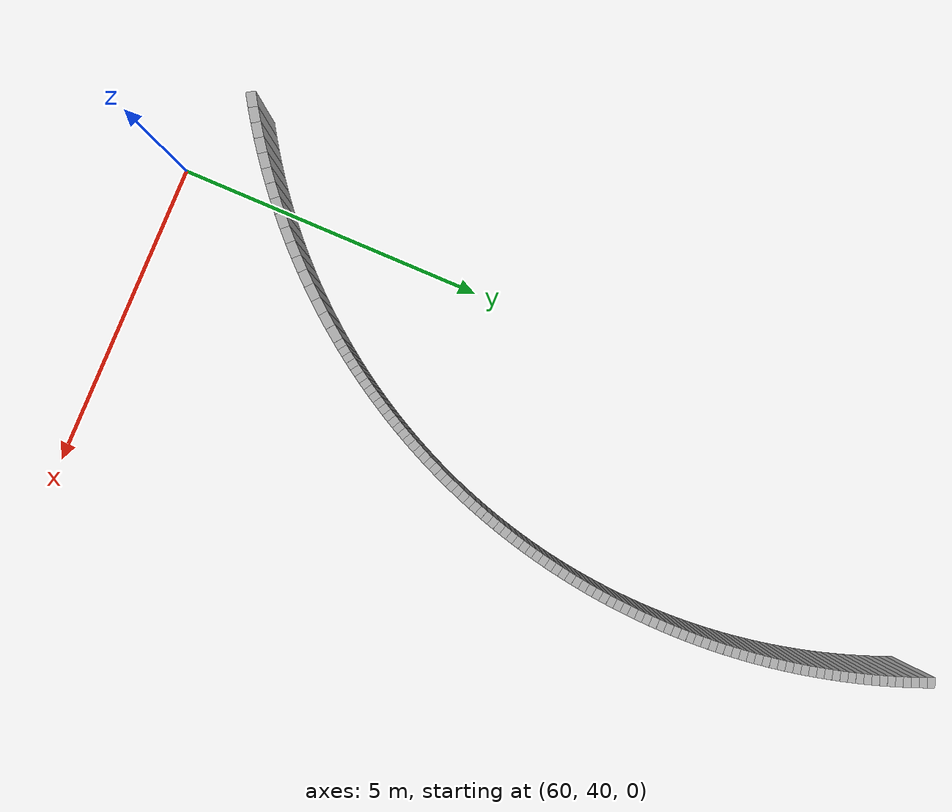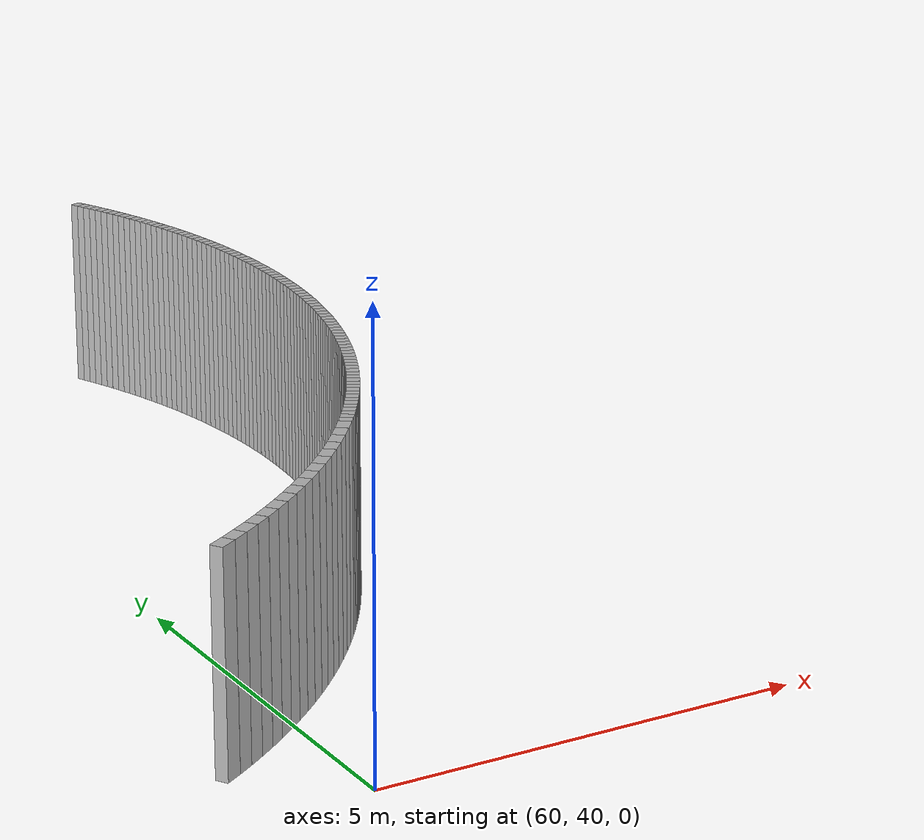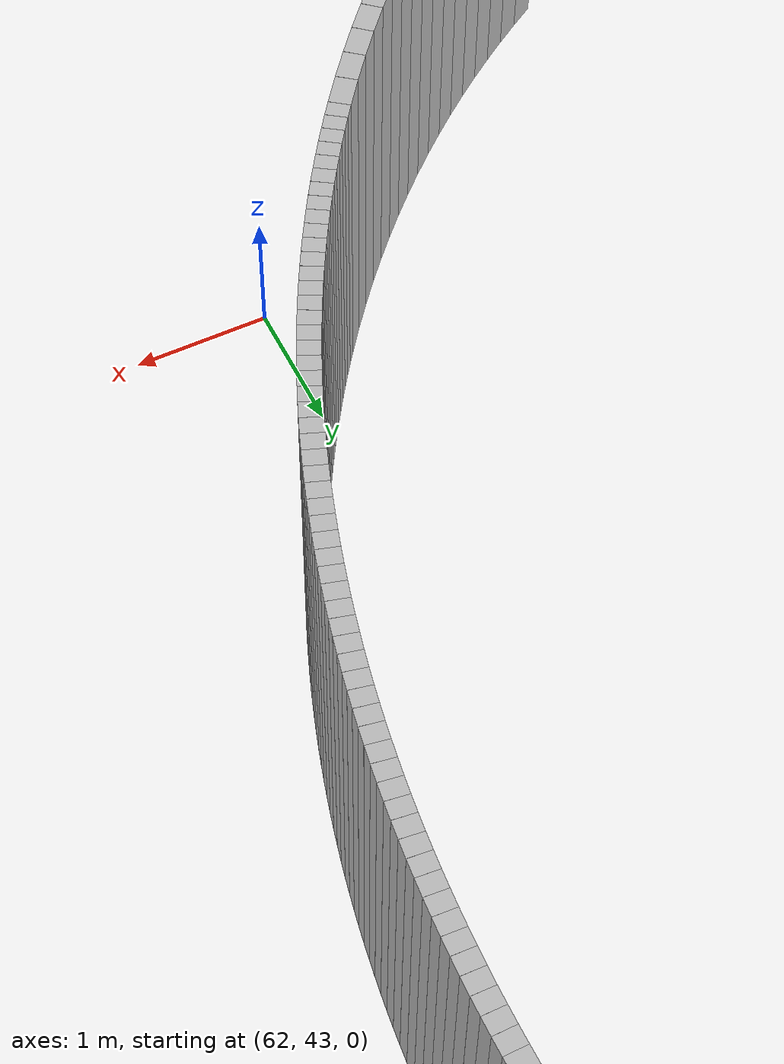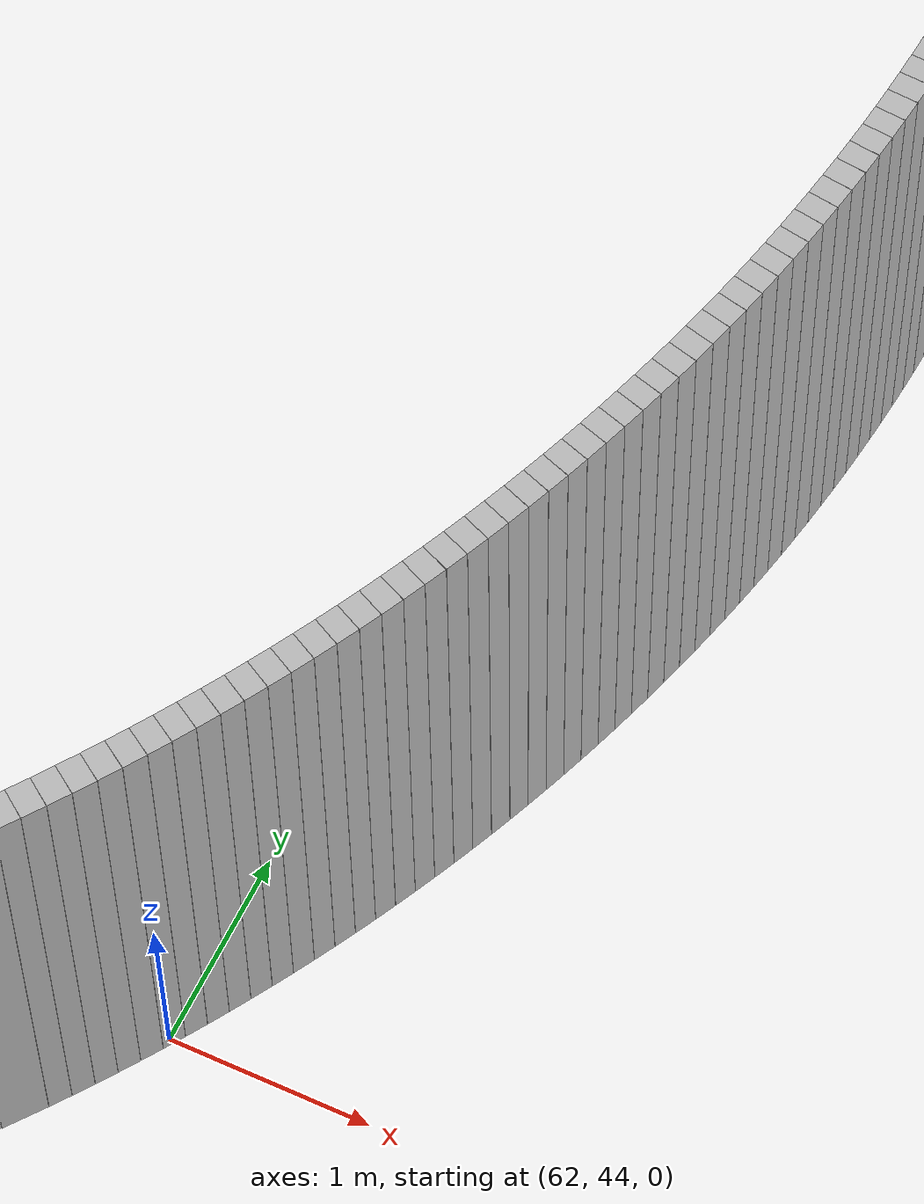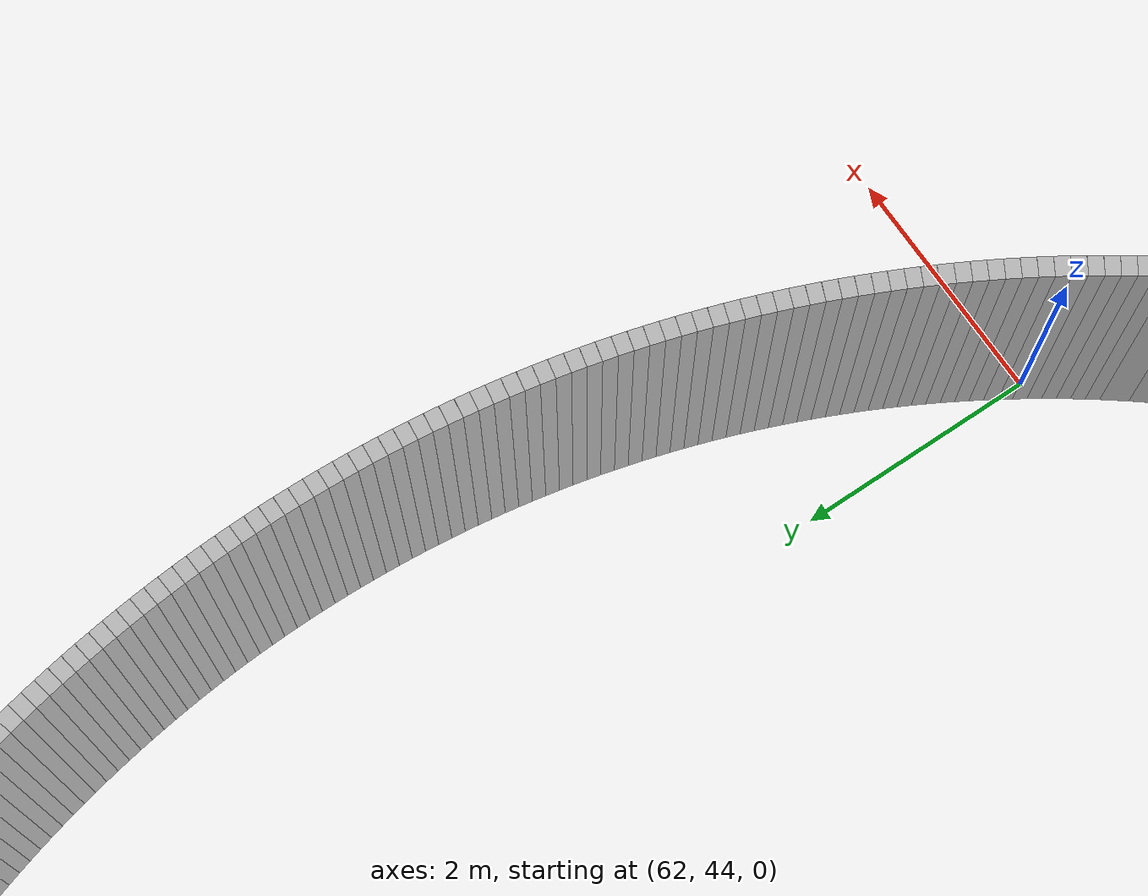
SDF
<sdf version="1.6">
 <model name="sps_2005">
  <static>1</static>
  <allow_auto_disable>0</allow_auto_disable>
  <link name="Wall8031">
   <collision name="collision"><geometry><box><size>0.227495 0.15 2.5</size></box></geometry></collision>
   <visual name="visual">
    <geometry><box><size>0.227495 0.15 2.5</size></box></geometry>
    <transparency>0.0</transparency>
   </visual>
   <pose>58.878 40.981 1.25 0 -0 0.560988</pose>
  </link>
  <link name="Wall8032">
   <collision name="collision"><geometry><box><size>0.227482 0.15 2.5</size></box></geometry></collision>
   <visual name="visual">
    <geometry><box><size>0.227482 0.15 2.5</size></box></geometry>
    <transparency>0.0</transparency>
   </visual>
   <pose>59.0692 41.1042 1.25 0 -0 0.583687</pose>
  </link>
  <link name="Wall8033">
   <collision name="collision"><geometry><box><size>0.227351 0.15 2.5</size></box></geometry></collision>
   <visual name="visual">
    <geometry><box><size>0.227351 0.15 2.5</size></box></geometry>
    <transparency>0.0</transparency>
   </visual>
   <pose>59.2575 41.2317 1.25 0 -0 0.606767</pose>
  </link>
  <link name="Wall8034">
   <collision name="collision"><geometry><box><size>0.227515 0.15 2.5</size></box></geometry></collision>
   <visual name="visual">
    <geometry><box><size>0.227515 0.15 2.5</size></box></geometry>
    <transparency>0.0</transparency>
   </visual>
   <pose>59.4429 41.3634 1.25 0 -0 0.628638</pose>
  </link>
  <link name="Wall8035">
   <collision name="collision"><geometry><box><size>0.227437 0.15 2.5</size></box></geometry></collision>
   <visual name="visual">
    <geometry><box><size>0.227437 0.15 2.5</size></box></geometry>
    <transparency>0.0</transparency>
   </visual>
   <pose>59.6253 41.4993 1.25 0 -0 0.651981</pose>
  </link>
  <link name="Wall8036">
   <collision name="collision"><geometry><box><size>0.227378 0.15 2.5</size></box></geometry></collision>
   <visual name="visual">
    <geometry><box><size>0.227378 0.15 2.5</size></box></geometry>
    <transparency>0.0</transparency>
   </visual>
   <pose>59.8045 41.6393 1.25 0 -0 0.674322</pose>
  </link>
  <link name="Wall8037">
   <collision name="collision"><geometry><box><size>0.227582 0.15 2.5</size></box></geometry></collision>
   <visual name="visual">
    <geometry><box><size>0.227582 0.15 2.5</size></box></geometry>
    <transparency>0.0</transparency>
   </visual>
   <pose>59.9805 41.7834 1.25 0 -0 0.697863</pose>
  </link>
  <link name="Wall8038">
   <collision name="collision"><geometry><box><size>0.227458 0.15 2.5</size></box></geometry></collision>
   <visual name="visual">
    <geometry><box><size>0.227458 0.15 2.5</size></box></geometry>
    <transparency>0.0</transparency>
   </visual>
   <pose>60.1532 41.9315 1.25 0 -0 0.71989</pose>
  </link>
  <link name="Wall8039">
   <collision name="collision"><geometry><box><size>0.227481 0.15 2.5</size></box></geometry></collision>
   <visual name="visual">
    <geometry><box><size>0.227481 0.15 2.5</size></box></geometry>
    <transparency>0.0</transparency>
   </visual>
   <pose>60.3225 42.0834 1.25 0 -0 0.742508</pose>
  </link>
  <link name="Wall8040">
   <collision name="collision"><geometry><box><size>0.227447 0.15 2.5</size></box></geometry></collision>
   <visual name="visual">
    <geometry><box><size>0.227447 0.15 2.5</size></box></geometry>
    <transparency>0.0</transparency>
   </visual>
   <pose>60.4883 42.2391 1.25 0 -0 0.765473</pose>
  </link>
  <link name="Wall8041">
   <collision name="collision"><geometry><box><size>0.227402 0.15 2.5</size></box></geometry></collision>
   <visual name="visual">
    <geometry><box><size>0.227402 0.15 2.5</size></box></geometry>
    <transparency>0.0</transparency>
   </visual>
   <pose>60.6505 42.3985 1.25 0 -0 0.787865</pose>
  </link>
  <link name="Wall8042">
   <collision name="collision"><geometry><box><size>0.227481 0.15 2.5</size></box></geometry></collision>
   <visual name="visual">
    <geometry><box><size>0.227481 0.15 2.5</size></box></geometry>
    <transparency>0.0</transparency>
   </visual>
   <pose>60.809 42.5616 1.25 0 -0 0.811773</pose>
  </link>
  <link name="Wall8043">
   <collision name="collision"><geometry><box><size>0.227409 0.15 2.5</size></box></geometry></collision>
   <visual name="visual">
    <geometry><box><size>0.227409 0.15 2.5</size></box></geometry>
    <transparency>0.0</transparency>
   </visual>
   <pose>60.9636 42.7283 1.25 0 -0 0.833812</pose>
  </link>
  <link name="Wall8044">
   <collision name="collision"><geometry><box><size>0.227368 0.15 2.5</size></box></geometry></collision>
   <visual name="visual">
    <geometry><box><size>0.227368 0.15 2.5</size></box></geometry>
    <transparency>0.0</transparency>
   </visual>
   <pose>61.1146 42.8984 1.25 0 -0 0.856259</pose>
  </link>
  <link name="Wall8045">
   <collision name="collision"><geometry><box><size>0.227457 0.15 2.5</size></box></geometry></collision>
   <visual name="visual">
    <geometry><box><size>0.227457 0.15 2.5</size></box></geometry>
    <transparency>0.0</transparency>
   </visual>
   <pose>61.2616 43.0719 1.25 0 -0 0.879459</pose>
  </link>
  <link name="Wall8046">
   <collision name="collision"><geometry><box><size>0.227506 0.15 2.5</size></box></geometry></collision>
   <visual name="visual">
    <geometry><box><size>0.227506 0.15 2.5</size></box></geometry>
    <transparency>0.0</transparency>
   </visual>
   <pose>61.4047 43.2487 1.25 0 -0 0.901376</pose>
  </link>
  <link name="Wall8047">
   <collision name="collision"><geometry><box><size>0.227369 0.15 2.5</size></box></geometry></collision>
   <visual name="visual">
    <geometry><box><size>0.227369 0.15 2.5</size></box></geometry>
    <transparency>0.0</transparency>
   </visual>
   <pose>61.5437 43.4287 1.25 0 -0 0.924987</pose>
  </link>
  <link name="Wall8048">
   <collision name="collision"><geometry><box><size>0.113621 0.15 2.5</size></box></geometry></collision>
   <visual name="visual">
    <geometry><box><size>0.113621 0.15 2.5</size></box></geometry>
    <transparency>0.0</transparency>
   </visual>
   <pose>61.6456 43.5654 1.25 0 -0 0.940618</pose>
  </link>
  <link name="Wall8049">
   <collision name="collision"><geometry><box><size>0.113928 0.15 2.5</size></box></geometry></collision>
   <visual name="visual">
    <geometry><box><size>0.113928 0.15 2.5</size></box></geometry>
    <transparency>0.0</transparency>
   </visual>
   <pose>61.7121 43.6577 1.25 0 -0 0.952477</pose>
  </link>
  <link name="Wall8050">
   <collision name="collision"><geometry><box><size>0.113641 0.15 2.5</size></box></geometry></collision>
   <visual name="visual">
    <geometry><box><size>0.113641 0.15 2.5</size></box></geometry>
    <transparency>0.0</transparency>
   </visual>
   <pose>61.7775 43.7508 1.25 0 -0 0.96447</pose>
  </link>
  <link name="Wall8051">
   <collision name="collision"><geometry><box><size>0.11364 0.15 2.5</size></box></geometry></collision>
   <visual name="visual">
    <geometry><box><size>0.11364 0.15 2.5</size></box></geometry>
    <transparency>0.0</transparency>
   </visual>
   <pose>61.8416 43.8446 1.25 0 -0 0.976835</pose>
  </link>
  <link name="Wall8052">
   <collision name="collision"><geometry><box><size>0.11391 0.15 2.5</size></box></geometry></collision>
   <visual name="visual">
    <geometry><box><size>0.11391 0.15 2.5</size></box></geometry>
    <transparency>0.0</transparency>
   </visual>
   <pose>61.9048 43.9392 1.25 0 -0 0.986806</pose>
  </link>
  <link name="Wall8053">
   <collision name="collision"><geometry><box><size>0.113736 0.15 2.5</size></box></geometry></collision>
   <visual name="visual">
    <geometry><box><size>0.113736 0.15 2.5</size></box></geometry>
    <transparency>0.0</transparency>
   </visual>
   <pose>61.9671 44.0345 1.25 0 -0 0.997976</pose>
  </link>
  <link name="Wall8054">
   <collision name="collision"><geometry><box><size>0.113661 0.15 2.5</size></box></geometry></collision>
   <visual name="visual">
    <geometry><box><size>0.113661 0.15 2.5</size></box></geometry>
    <transparency>0.0</transparency>
   </visual>
   <pose>62.0282 44.1304 1.25 0 -0 1.00901</pose>
  </link>
  <link name="Wall8055">
   <collision name="collision"><geometry><box><size>0.113627 0.15 2.5</size></box></geometry></collision>
   <visual name="visual">
    <geometry><box><size>0.113627 0.15 2.5</size></box></geometry>
    <transparency>0.0</transparency>
   </visual>
   <pose>62.088 44.227 1.25 0 -0 1.02273</pose>
  </link>
  <link name="Wall8056">
   <collision name="collision"><geometry><box><size>0.113949 0.15 2.5</size></box></geometry></collision>
   <visual name="visual">
    <geometry><box><size>0.113949 0.15 2.5</size></box></geometry>
    <transparency>0.0</transparency>
   </visual>
   <pose>62.1468 44.3244 1.25 0 -0 1.03258</pose>
  </link>
  <link name="Wall8057">
   <collision name="collision"><geometry><box><size>0.113644 0.15 2.5</size></box></geometry></collision>
   <visual name="visual">
    <geometry><box><size>0.113644 0.15 2.5</size></box></geometry>
    <transparency>0.0</transparency>
   </visual>
   <pose>62.2046 44.4224 1.25 0 -0 1.04346</pose>
  </link>
  <link name="Wall8058">
   <collision name="collision"><geometry><box><size>0.113755 0.15 2.5</size></box></geometry></collision>
   <visual name="visual">
    <geometry><box><size>0.113755 0.15 2.5</size></box></geometry>
    <transparency>0.0</transparency>
   </visual>
   <pose>62.2613 44.521 1.25 0 -0 1.05578</pose>
  </link>
  <link name="Wall8059">
   <collision name="collision"><geometry><box><size>0.113781 0.15 2.5</size></box></geometry></collision>
   <visual name="visual">
    <geometry><box><size>0.113781 0.15 2.5</size></box></geometry>
    <transparency>0.0</transparency>
   </visual>
   <pose>62.3168 44.6203 1.25 0 -0 1.06636</pose>
  </link>
  <link name="Wall8060">
   <collision name="collision"><geometry><box><size>0.11368 0.15 2.5</size></box></geometry></collision>
   <visual name="visual">
    <geometry><box><size>0.11368 0.15 2.5</size></box></geometry>
    <transparency>0.0</transparency>
   </visual>
   <pose>62.3711 44.7202 1.25 0 -0 1.07809</pose>
  </link>
  <link name="Wall8061">
   <collision name="collision"><geometry><box><size>0.113731 0.15 2.5</size></box></geometry></collision>
   <visual name="visual">
    <geometry><box><size>0.113731 0.15 2.5</size></box></geometry>
    <transparency>0.0</transparency>
   </visual>
   <pose>62.4243 44.8207 1.25 0 -0 1.08987</pose>
  </link>
  <link name="Wall8062">
   <collision name="collision"><geometry><box><size>0.113661 0.15 2.5</size></box></geometry></collision>
   <visual name="visual">
    <geometry><box><size>0.113661 0.15 2.5</size></box></geometry>
    <transparency>0.0</transparency>
   </visual>
   <pose>62.4763 44.9218 1.25 0 -0 1.10163</pose>
  </link>
  <link name="Wall8063">
   <collision name="collision"><geometry><box><size>0.11377 0.15 2.5</size></box></geometry></collision>
   <visual name="visual">
    <geometry><box><size>0.11377 0.15 2.5</size></box></geometry>
    <transparency>0.0</transparency>
   </visual>
   <pose>62.5272 45.0235 1.25 0 -0 1.11171</pose>
  </link>
  <link name="Wall8064">
   <collision name="collision"><geometry><box><size>0.113705 0.15 2.5</size></box></geometry></collision>
   <visual name="visual">
    <geometry><box><size>0.113705 0.15 2.5</size></box></geometry>
    <transparency>0.0</transparency>
   </visual>
   <pose>62.577 45.1258 1.25 0 -0 1.12515</pose>
  </link>
  <link name="Wall8065">
   <collision name="collision"><geometry><box><size>0.113649 0.15 2.5</size></box></geometry></collision>
   <visual name="visual">
    <geometry><box><size>0.113649 0.15 2.5</size></box></geometry>
    <transparency>0.0</transparency>
   </visual>
   <pose>62.6254 45.2286 1.25 0 -0 1.13501</pose>
  </link>
  <link name="Wall8066">
   <collision name="collision"><geometry><box><size>0.11374 0.15 2.5</size></box></geometry></collision>
   <visual name="visual">
    <geometry><box><size>0.11374 0.15 2.5</size></box></geometry>
    <transparency>0.0</transparency>
   </visual>
   <pose>62.6729 45.3319 1.25 0 -0 1.14483</pose>
  </link>
  <link name="Wall8067">
   <collision name="collision"><geometry><box><size>0.113726 0.15 2.5</size></box></geometry></collision>
   <visual name="visual">
    <geometry><box><size>0.113726 0.15 2.5</size></box></geometry>
    <transparency>0.0</transparency>
   </visual>
   <pose>62.7192 45.4358 1.25 0 -0 1.15829</pose>
  </link>
  <link name="Wall8068">
   <collision name="collision"><geometry><box><size>0.113731 0.15 2.5</size></box></geometry></collision>
   <visual name="visual">
    <geometry><box><size>0.113731 0.15 2.5</size></box></geometry>
    <transparency>0.0</transparency>
   </visual>
   <pose>62.7643 45.5402 1.25 0 -0 1.16767</pose>
  </link>
  <link name="Wall8069">
   <collision name="collision"><geometry><box><size>0.113752 0.15 2.5</size></box></geometry></collision>
   <visual name="visual">
    <geometry><box><size>0.113752 0.15 2.5</size></box></geometry>
    <transparency>0.0</transparency>
   </visual>
   <pose>62.8082 45.6451 1.25 0 -0 1.18112</pose>
  </link>
  <link name="Wall8070">
   <collision name="collision"><geometry><box><size>0.113872 0.15 2.5</size></box></geometry></collision>
   <visual name="visual">
    <geometry><box><size>0.113872 0.15 2.5</size></box></geometry>
    <transparency>0.0</transparency>
   </visual>
   <pose>62.8509 45.7506 1.25 0 -0 1.19138</pose>
  </link>
  <link name="Wall8071">
   <collision name="collision"><geometry><box><size>0.11378 0.15 2.5</size></box></geometry></collision>
   <visual name="visual">
    <geometry><box><size>0.11378 0.15 2.5</size></box></geometry>
    <transparency>0.0</transparency>
   </visual>
   <pose>62.8924 45.8566 1.25 0 -0 1.20374</pose>
  </link>
  <link name="Wall8072">
   <collision name="collision"><geometry><box><size>0.11352 0.15 2.5</size></box></geometry></collision>
   <visual name="visual">
    <geometry><box><size>0.11352 0.15 2.5</size></box></geometry>
    <transparency>0.0</transparency>
   </visual>
   <pose>62.9327 45.9629 1.25 0 -0 1.21435</pose>
  </link>
  <link name="Wall8073">
   <collision name="collision"><geometry><box><size>0.113731 0.15 2.5</size></box></geometry></collision>
   <visual name="visual">
    <geometry><box><size>0.113731 0.15 2.5</size></box></geometry>
    <transparency>0.0</transparency>
   </visual>
   <pose>62.9717 46.0696 1.25 0 -0 1.22647</pose>
  </link>
  <link name="Wall8074">
   <collision name="collision"><geometry><box><size>0.113613 0.15 2.5</size></box></geometry></collision>
   <visual name="visual">
    <geometry><box><size>0.113613 0.15 2.5</size></box></geometry>
    <transparency>0.0</transparency>
   </visual>
   <pose>63.0095 46.1768 1.25 0 -0 1.23749</pose>
  </link>
  <link name="Wall8075">
   <collision name="collision"><geometry><box><size>0.113876 0.15 2.5</size></box></geometry></collision>
   <visual name="visual">
    <geometry><box><size>0.113876 0.15 2.5</size></box></geometry>
    <transparency>0.0</transparency>
   </visual>
   <pose>63.046 46.2845 1.25 0 -0 1.24905</pose>
  </link>
  <link name="Wall8076">
   <collision name="collision"><geometry><box><size>0.113612 0.15 2.5</size></box></geometry></collision>
   <visual name="visual">
    <geometry><box><size>0.113612 0.15 2.5</size></box></geometry>
    <transparency>0.0</transparency>
   </visual>
   <pose>63.0814 46.3926 1.25 0 -0 1.25958</pose>
  </link>
  <link name="Wall8077">
   <collision name="collision"><geometry><box><size>0.113729 0.15 2.5</size></box></geometry></collision>
   <visual name="visual">
    <geometry><box><size>0.113729 0.15 2.5</size></box></geometry>
    <transparency>0.0</transparency>
   </visual>
   <pose>63.1157 46.501 1.25 0 -0 1.2706</pose>
  </link>
  <link name="Wall8078">
   <collision name="collision"><geometry><box><size>0.1139 0.15 2.5</size></box></geometry></collision>
   <visual name="visual">
    <geometry><box><size>0.1139 0.15 2.5</size></box></geometry>
    <transparency>0.0</transparency>
   </visual>
   <pose>63.1487 46.6099 1.25 0 -0 1.28227</pose>
  </link>
  <link name="Wall8079">
   <collision name="collision"><geometry><box><size>0.113685 0.15 2.5</size></box></geometry></collision>
   <visual name="visual">
    <geometry><box><size>0.113685 0.15 2.5</size></box></geometry>
    <transparency>0.0</transparency>
   </visual>
   <pose>63.1804 46.7192 1.25 0 -0 1.29456</pose>
  </link>
  <link name="Wall8080">
   <collision name="collision"><geometry><box><size>0.113594 0.15 2.5</size></box></geometry></collision>
   <visual name="visual">
    <geometry><box><size>0.113594 0.15 2.5</size></box></geometry>
    <transparency>0.0</transparency>
   </visual>
   <pose>63.2108 46.8287 1.25 0 -0 1.30549</pose>
  </link>
  <link name="Wall8081">
   <collision name="collision"><geometry><box><size>0.113811 0.15 2.5</size></box></geometry></collision>
   <visual name="visual">
    <geometry><box><size>0.113811 0.15 2.5</size></box></geometry>
    <transparency>0.0</transparency>
   </visual>
   <pose>63.24 46.9386 1.25 0 -0 1.3171</pose>
  </link>
  <link name="Wall8082">
   <collision name="collision"><geometry><box><size>0.113763 0.15 2.5</size></box></geometry></collision>
   <visual name="visual">
    <geometry><box><size>0.113763 0.15 2.5</size></box></geometry>
    <transparency>0.0</transparency>
   </visual>
   <pose>63.2679 47.0489 1.25 0 -0 1.32751</pose>
  </link>
  <link name="Wall8083">
   <collision name="collision"><geometry><box><size>0.113849 0.15 2.5</size></box></geometry></collision>
   <visual name="visual">
    <geometry><box><size>0.113849 0.15 2.5</size></box></geometry>
    <transparency>0.0</transparency>
   </visual>
   <pose>63.2946 47.1595 1.25 0 -0 1.34038</pose>
  </link>
  <link name="Wall8084">
   <collision name="collision"><geometry><box><size>0.113709 0.15 2.5</size></box></geometry></collision>
   <visual name="visual">
    <geometry><box><size>0.113709 0.15 2.5</size></box></geometry>
    <transparency>0.0</transparency>
   </visual>
   <pose>63.3201 47.2704 1.25 0 -0 1.35056</pose>
  </link>
  <link name="Wall8085">
   <collision name="collision"><geometry><box><size>0.113674 0.15 2.5</size></box></geometry></collision>
   <visual name="visual">
    <geometry><box><size>0.113674 0.15 2.5</size></box></geometry>
    <transparency>0.0</transparency>
   </visual>
   <pose>63.3443 47.3815 1.25 0 -0 1.36203</pose>
  </link>
  <link name="Wall8086">
   <collision name="collision"><geometry><box><size>0.113583 0.15 2.5</size></box></geometry></collision>
   <visual name="visual">
    <geometry><box><size>0.113583 0.15 2.5</size></box></geometry>
    <transparency>0.0</transparency>
   </visual>
   <pose>63.3671 47.4928 1.25 0 -0 1.37393</pose>
  </link>
  <link name="Wall8087">
   <collision name="collision"><geometry><box><size>0.113771 0.15 2.5</size></box></geometry></collision>
   <visual name="visual">
    <geometry><box><size>0.113771 0.15 2.5</size></box></geometry>
    <transparency>0.0</transparency>
   </visual>
   <pose>63.3888 47.6044 1.25 0 -0 1.38518</pose>
  </link>
  <link name="Wall8088">
   <collision name="collision"><geometry><box><size>0.113912 0.15 2.5</size></box></geometry></collision>
   <visual name="visual">
    <geometry><box><size>0.113912 0.15 2.5</size></box></geometry>
    <transparency>0.0</transparency>
   </visual>
   <pose>63.4091 47.7164 1.25 0 -0 1.39631</pose>
  </link>
  <link name="Wall8089">
   <collision name="collision"><geometry><box><size>0.113747 0.15 2.5</size></box></geometry></collision>
   <visual name="visual">
    <geometry><box><size>0.113747 0.15 2.5</size></box></geometry>
    <transparency>0.0</transparency>
   </visual>
   <pose>63.4282 47.8286 1.25 0 -0 1.40803</pose>
  </link>
  <link name="Wall8090">
   <collision name="collision"><geometry><box><size>0.113676 0.15 2.5</size></box></geometry></collision>
   <visual name="visual">
    <geometry><box><size>0.113676 0.15 2.5</size></box></geometry>
    <transparency>0.0</transparency>
   </visual>
   <pose>63.4461 47.9409 1.25 0 -0 1.4188</pose>
  </link>
  <link name="Wall8091">
   <collision name="collision"><geometry><box><size>0.11374 0.15 2.5</size></box></geometry></collision>
   <visual name="visual">
    <geometry><box><size>0.11374 0.15 2.5</size></box></geometry>
    <transparency>0.0</transparency>
   </visual>
   <pose>63.4627 48.0534 1.25 0 -0 1.42973</pose>
  </link>
  <link name="Wall8092">
   <collision name="collision"><geometry><box><size>0.113551 0.15 2.5</size></box></geometry></collision>
   <visual name="visual">
    <geometry><box><size>0.113551 0.15 2.5</size></box></geometry>
    <transparency>0.0</transparency>
   </visual>
   <pose>63.478 48.166 1.25 0 -0 1.44197</pose>
  </link>
  <link name="Wall8093">
   <collision name="collision"><geometry><box><size>0.113771 0.15 2.5</size></box></geometry></collision>
   <visual name="visual">
    <geometry><box><size>0.113771 0.15 2.5</size></box></geometry>
    <transparency>0.0</transparency>
   </visual>
   <pose>63.492 48.2788 1.25 0 -0 1.4525</pose>
  </link>
  <link name="Wall8094">
   <collision name="collision"><geometry><box><size>0.11385 0.15 2.5</size></box></geometry></collision>
   <visual name="visual">
    <geometry><box><size>0.11385 0.15 2.5</size></box></geometry>
    <transparency>0.0</transparency>
   </visual>
   <pose>63.5047 48.3919 1.25 0 -0 1.46553</pose>
  </link>
  <link name="Wall8095">
   <collision name="collision"><geometry><box><size>0.113734 0.15 2.5</size></box></geometry></collision>
   <visual name="visual">
    <geometry><box><size>0.113734 0.15 2.5</size></box></geometry>
    <transparency>0.0</transparency>
   </visual>
   <pose>63.516 48.5051 1.25 0 -0 1.47567</pose>
  </link>
  <link name="Wall8096">
   <collision name="collision"><geometry><box><size>0.113731 0.15 2.5</size></box></geometry></collision>
   <visual name="visual">
    <geometry><box><size>0.113731 0.15 2.5</size></box></geometry>
    <transparency>0.0</transparency>
   </visual>
   <pose>63.5261 48.6184 1.25 0 -0 1.48806</pose>
  </link>
  <link name="Wall8097">
   <collision name="collision"><geometry><box><size>0.113702 0.15 2.5</size></box></geometry></collision>
   <visual name="visual">
    <geometry><box><size>0.113702 0.15 2.5</size></box></geometry>
    <transparency>0.0</transparency>
   </visual>
   <pose>63.535 48.7318 1.25 0 -0 1.49826</pose>
  </link>
  <link name="Wall8098">
   <collision name="collision"><geometry><box><size>0.113849 0.15 2.5</size></box></geometry></collision>
   <visual name="visual">
    <geometry><box><size>0.113849 0.15 2.5</size></box></geometry>
    <transparency>0.0</transparency>
   </visual>
   <pose>63.5425 48.8453 1.25 0 -0 1.51125</pose>
  </link>
  <link name="Wall8099">
   <collision name="collision"><geometry><box><size>0.113542 0.15 2.5</size></box></geometry></collision>
   <visual name="visual">
    <geometry><box><size>0.113542 0.15 2.5</size></box></geometry>
    <transparency>0.0</transparency>
   </visual>
   <pose>63.5487 48.9588 1.25 0 -0 1.52132</pose>
  </link>
  <link name="Wall8100">
   <collision name="collision"><geometry><box><size>0.113671 0.15 2.5</size></box></geometry></collision>
   <visual name="visual">
    <geometry><box><size>0.113671 0.15 2.5</size></box></geometry>
    <transparency>0.0</transparency>
   </visual>
   <pose>63.5537 49.0723 1.25 0 -0 1.53213</pose>
  </link>
  <link name="Wall8101">
   <collision name="collision"><geometry><box><size>0.113814 0.15 2.5</size></box></geometry></collision>
   <visual name="visual">
    <geometry><box><size>0.113814 0.15 2.5</size></box></geometry>
    <transparency>0.0</transparency>
   </visual>
   <pose>63.5575 49.186 1.25 0 -0 1.54291</pose>
  </link>
  <link name="Wall8102">
   <collision name="collision"><geometry><box><size>0.113659 0.15 2.5</size></box></geometry></collision>
   <visual name="visual">
    <geometry><box><size>0.113659 0.15 2.5</size></box></geometry>
    <transparency>0.0</transparency>
   </visual>
   <pose>63.5598 49.2997 1.25 0 -0 1.55683</pose>
  </link>
  <link name="Wall8103">
   <collision name="collision"><geometry><box><size>0.11377 0.15 2.5</size></box></geometry></collision>
   <visual name="visual">
    <geometry><box><size>0.11377 0.15 2.5</size></box></geometry>
    <transparency>0.0</transparency>
   </visual>
   <pose>63.5608 49.4134 1.25 0 -0 1.56704</pose>
  </link>
  <link name="Wall8104">
   <collision name="collision"><geometry><box><size>0.113833 0.15 2.5</size></box></geometry></collision>
   <visual name="visual">
    <geometry><box><size>0.113833 0.15 2.5</size></box></geometry>
    <transparency>0.0</transparency>
   </visual>
   <pose>63.5607 49.5272 1.25 0 -0 1.57777</pose>
  </link>
  <link name="Wall8105">
   <collision name="collision"><geometry><box><size>0.113608 0.15 2.5</size></box></geometry></collision>
   <visual name="visual">
    <geometry><box><size>0.113608 0.15 2.5</size></box></geometry>
    <transparency>0.0</transparency>
   </visual>
   <pose>63.5592 49.6409 1.25 0 -0 1.59014</pose>
  </link>
  <link name="Wall8106">
   <collision name="collision"><geometry><box><size>0.113643 0.15 2.5</size></box></geometry></collision>
   <visual name="visual">
    <geometry><box><size>0.113643 0.15 2.5</size></box></geometry>
    <transparency>0.0</transparency>
   </visual>
   <pose>63.5563 49.7545 1.25 0 -0 1.60249</pose>
  </link>
  <link name="Wall8107">
   <collision name="collision"><geometry><box><size>0.113689 0.15 2.5</size></box></geometry></collision>
   <visual name="visual">
    <geometry><box><size>0.113689 0.15 2.5</size></box></geometry>
    <transparency>0.0</transparency>
   </visual>
   <pose>63.5521 49.8681 1.25 0 -0 1.61322</pose>
  </link>
  <link name="Wall8108">
   <collision name="collision"><geometry><box><size>0.113734 0.15 2.5</size></box></geometry></collision>
   <visual name="visual">
    <geometry><box><size>0.113734 0.15 2.5</size></box></geometry>
    <transparency>0.0</transparency>
   </visual>
   <pose>63.5467 49.9817 1.25 0 -0 1.6218</pose>
  </link>
  <link name="Wall8109">
   <collision name="collision"><geometry><box><size>0.113875 0.15 2.5</size></box></geometry></collision>
   <visual name="visual">
    <geometry><box><size>0.113875 0.15 2.5</size></box></geometry>
    <transparency>0.0</transparency>
   </visual>
   <pose>63.5402 50.0953 1.25 0 -0 1.63408</pose>
  </link>
  <link name="Wall8110">
   <collision name="collision"><geometry><box><size>0.113729 0.15 2.5</size></box></geometry></collision>
   <visual name="visual">
    <geometry><box><size>0.113729 0.15 2.5</size></box></geometry>
    <transparency>0.0</transparency>
   </visual>
   <pose>63.5323 50.2088 1.25 0 -0 1.64654</pose>
  </link>
  <link name="Wall8111">
   <collision name="collision"><geometry><box><size>0.113601 0.15 2.5</size></box></geometry></collision>
   <visual name="visual">
    <geometry><box><size>0.113601 0.15 2.5</size></box></geometry>
    <transparency>0.0</transparency>
   </visual>
   <pose>63.523 50.3221 1.25 0 -0 1.65902</pose>
  </link>
  <link name="Wall8112">
   <collision name="collision"><geometry><box><size>0.113752 0.15 2.5</size></box></geometry></collision>
   <visual name="visual">
    <geometry><box><size>0.113752 0.15 2.5</size></box></geometry>
    <transparency>0.0</transparency>
   </visual>
   <pose>63.5125 50.4353 1.25 0 -0 1.66753</pose>
  </link>
  <link name="Wall8113">
   <collision name="collision"><geometry><box><size>0.113674 0.15 2.5</size></box></geometry></collision>
   <visual name="visual">
    <geometry><box><size>0.113674 0.15 2.5</size></box></geometry>
    <transparency>0.0</transparency>
   </visual>
   <pose>63.5008 50.5484 1.25 0 -0 1.68163</pose>
  </link>
  <link name="Wall8114">
   <collision name="collision"><geometry><box><size>0.113876 0.15 2.5</size></box></geometry></collision>
   <visual name="visual">
    <geometry><box><size>0.113876 0.15 2.5</size></box></geometry>
    <transparency>0.0</transparency>
   </visual>
   <pose>63.4876 50.6614 1.25 0 -0 1.69223</pose>
  </link>
  <link name="Wall8115">
   <collision name="collision"><geometry><box><size>0.113606 0.15 2.5</size></box></geometry></collision>
   <visual name="visual">
    <geometry><box><size>0.113606 0.15 2.5</size></box></geometry>
    <transparency>0.0</transparency>
   </visual>
   <pose>63.4732 50.7742 1.25 0 -0 1.70335</pose>
  </link>
  <link name="Wall8116">
   <collision name="collision"><geometry><box><size>0.11374 0.15 2.5</size></box></geometry></collision>
   <visual name="visual">
    <geometry><box><size>0.11374 0.15 2.5</size></box></geometry>
    <transparency>0.0</transparency>
   </visual>
   <pose>63.4575 50.8868 1.25 0 -0 1.71565</pose>
  </link>
  <link name="Wall8117">
   <collision name="collision"><geometry><box><size>0.113765 0.15 2.5</size></box></geometry></collision>
   <visual name="visual">
    <geometry><box><size>0.113765 0.15 2.5</size></box></geometry>
    <transparency>0.0</transparency>
   </visual>
   <pose>63.4405 50.9993 1.25 0 -0 1.7243</pose>
  </link>
  <link name="Wall8118">
   <collision name="collision"><geometry><box><size>0.113777 0.15 2.5</size></box></geometry></collision>
   <visual name="visual">
    <geometry><box><size>0.113777 0.15 2.5</size></box></geometry>
    <transparency>0.0</transparency>
   </visual>
   <pose>63.4224 51.1116 1.25 0 -0 1.73841</pose>
  </link>
  <link name="Wall8119">
   <collision name="collision"><geometry><box><size>0.113775 0.15 2.5</size></box></geometry></collision>
   <visual name="visual">
    <geometry><box><size>0.113775 0.15 2.5</size></box></geometry>
    <transparency>0.0</transparency>
   </visual>
   <pose>63.4029 51.2237 1.25 0 -0 1.74767</pose>
  </link>
  <link name="Wall8120">
   <collision name="collision"><geometry><box><size>0.113659 0.15 2.5</size></box></geometry></collision>
   <visual name="visual">
    <geometry><box><size>0.113659 0.15 2.5</size></box></geometry>
    <transparency>0.0</transparency>
   </visual>
   <pose>63.3822 51.3355 1.25 0 -0 1.75987</pose>
  </link>
  <link name="Wall8121">
   <collision name="collision"><geometry><box><size>0.113847 0.15 2.5</size></box></geometry></collision>
   <visual name="visual">
    <geometry><box><size>0.113847 0.15 2.5</size></box></geometry>
    <transparency>0.0</transparency>
   </visual>
   <pose>63.3602 51.4471 1.25 0 -0 1.77103</pose>
  </link>
  <link name="Wall8122">
   <collision name="collision"><geometry><box><size>0.113764 0.15 2.5</size></box></geometry></collision>
   <visual name="visual">
    <geometry><box><size>0.113764 0.15 2.5</size></box></geometry>
    <transparency>0.0</transparency>
   </visual>
   <pose>63.3368 51.5585 1.25 0 -0 1.78324</pose>
  </link>
  <link name="Wall8123">
   <collision name="collision"><geometry><box><size>0.113611 0.15 2.5</size></box></geometry></collision>
   <visual name="visual">
    <geometry><box><size>0.113611 0.15 2.5</size></box></geometry>
    <transparency>0.0</transparency>
   </visual>
   <pose>63.3122 51.6695 1.25 0 -0 1.79453</pose>
  </link>
  <link name="Wall8124">
   <collision name="collision"><geometry><box><size>0.113752 0.15 2.5</size></box></geometry></collision>
   <visual name="visual">
    <geometry><box><size>0.113752 0.15 2.5</size></box></geometry>
    <transparency>0.0</transparency>
   </visual>
   <pose>63.2863 51.7802 1.25 0 -0 1.80693</pose>
  </link>
  <link name="Wall8125">
   <collision name="collision"><geometry><box><size>0.113807 0.15 2.5</size></box></geometry></collision>
   <visual name="visual">
    <geometry><box><size>0.113807 0.15 2.5</size></box></geometry>
    <transparency>0.0</transparency>
   </visual>
   <pose>63.2592 51.8907 1.25 0 -0 1.81564</pose>
  </link>
  <link name="Wall8126">
   <collision name="collision"><geometry><box><size>0.113565 0.15 2.5</size></box></geometry></collision>
   <visual name="visual">
    <geometry><box><size>0.113565 0.15 2.5</size></box></geometry>
    <transparency>0.0</transparency>
   </visual>
   <pose>63.2309 52.0008 1.25 0 -0 1.82894</pose>
  </link>
  <link name="Wall8127">
   <collision name="collision"><geometry><box><size>0.113883 0.15 2.5</size></box></geometry></collision>
   <visual name="visual">
    <geometry><box><size>0.113883 0.15 2.5</size></box></geometry>
    <transparency>0.0</transparency>
   </visual>
   <pose>63.2013 52.1106 1.25 0 -0 1.8393</pose>
  </link>
  <link name="Wall8128">
   <collision name="collision"><geometry><box><size>0.11366 0.15 2.5</size></box></geometry></collision>
   <visual name="visual">
    <geometry><box><size>0.11366 0.15 2.5</size></box></geometry>
    <transparency>0.0</transparency>
   </visual>
   <pose>63.1705 52.2201 1.25 0 -0 1.85212</pose>
  </link>
  <link name="Wall8129">
   <collision name="collision"><geometry><box><size>0.113794 0.15 2.5</size></box></geometry></collision>
   <visual name="visual">
    <geometry><box><size>0.113794 0.15 2.5</size></box></geometry>
    <transparency>0.0</transparency>
   </visual>
   <pose>63.1384 52.3292 1.25 0 -0 1.86184</pose>
  </link>
  <link name="Wall8130">
   <collision name="collision"><geometry><box><size>0.113605 0.15 2.5</size></box></geometry></collision>
   <visual name="visual">
    <geometry><box><size>0.113605 0.15 2.5</size></box></geometry>
    <transparency>0.0</transparency>
   </visual>
   <pose>63.105 52.4379 1.25 0 -0 1.87471</pose>
  </link>
  <link name="Wall8131">
   <collision name="collision"><geometry><box><size>0.113783 0.15 2.5</size></box></geometry></collision>
   <visual name="visual">
    <geometry><box><size>0.113783 0.15 2.5</size></box></geometry>
    <transparency>0.0</transparency>
   </visual>
   <pose>63.0705 52.5462 1.25 0 -0 1.88491</pose>
  </link>
  <link name="Wall8132">
   <collision name="collision"><geometry><box><size>0.11378 0.15 2.5</size></box></geometry></collision>
   <visual name="visual">
    <geometry><box><size>0.11378 0.15 2.5</size></box></geometry>
    <transparency>0.0</transparency>
   </visual>
   <pose>63.0347 52.6542 1.25 0 -0 1.89679</pose>
  </link>
  <link name="Wall8133">
   <collision name="collision"><geometry><box><size>0.113639 0.15 2.5</size></box></geometry></collision>
   <visual name="visual">
    <geometry><box><size>0.113639 0.15 2.5</size></box></geometry>
    <transparency>0.0</transparency>
   </visual>
   <pose>62.9976 52.7617 1.25 0 -0 1.908</pose>
  </link>
  <link name="Wall8134">
   <collision name="collision"><geometry><box><size>0.113568 0.15 2.5</size></box></geometry></collision>
   <visual name="visual">
    <geometry><box><size>0.113568 0.15 2.5</size></box></geometry>
    <transparency>0.0</transparency>
   </visual>
   <pose>62.9595 52.8687 1.25 0 -0 1.91906</pose>
  </link>
  <link name="Wall8135">
   <collision name="collision"><geometry><box><size>0.113898 0.15 2.5</size></box></geometry></collision>
   <visual name="visual">
    <geometry><box><size>0.113898 0.15 2.5</size></box></geometry>
    <transparency>0.0</transparency>
   </visual>
   <pose>62.9201 52.9754 1.25 0 -0 1.93001</pose>
  </link>
  <link name="Wall8136">
   <collision name="collision"><geometry><box><size>0.113808 0.15 2.5</size></box></geometry></collision>
   <visual name="visual">
    <geometry><box><size>0.113808 0.15 2.5</size></box></geometry>
    <transparency>0.0</transparency>
   </visual>
   <pose>62.8794 53.0817 1.25 0 -0 1.94294</pose>
  </link>
  <link name="Wall8137">
   <collision name="collision"><geometry><box><size>0.113566 0.15 2.5</size></box></geometry></collision>
   <visual name="visual">
    <geometry><box><size>0.113566 0.15 2.5</size></box></geometry>
    <transparency>0.0</transparency>
   </visual>
   <pose>62.8375 53.1874 1.25 0 -0 1.9536</pose>
  </link>
  <link name="Wall8138">
   <collision name="collision"><geometry><box><size>0.113723 0.15 2.5</size></box></geometry></collision>
   <visual name="visual">
    <geometry><box><size>0.113723 0.15 2.5</size></box></geometry>
    <transparency>0.0</transparency>
   </visual>
   <pose>62.7945 53.2926 1.25 0 -0 1.96406</pose>
  </link>
 </model>
</sdf>
